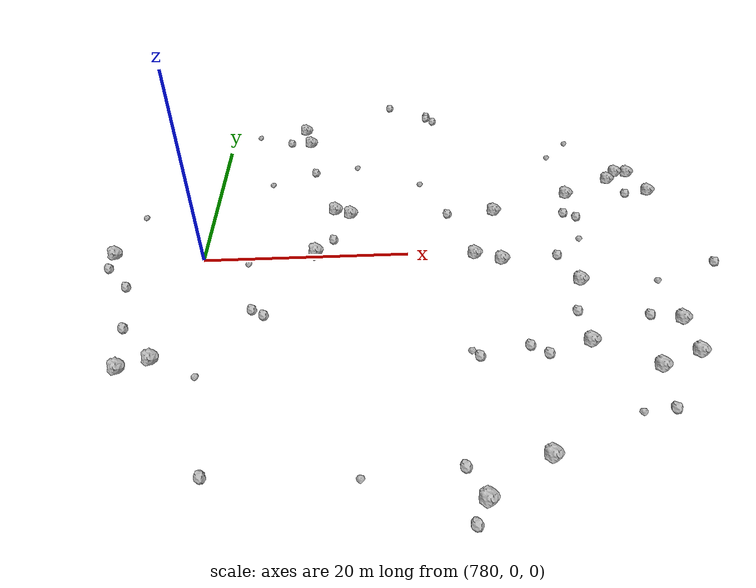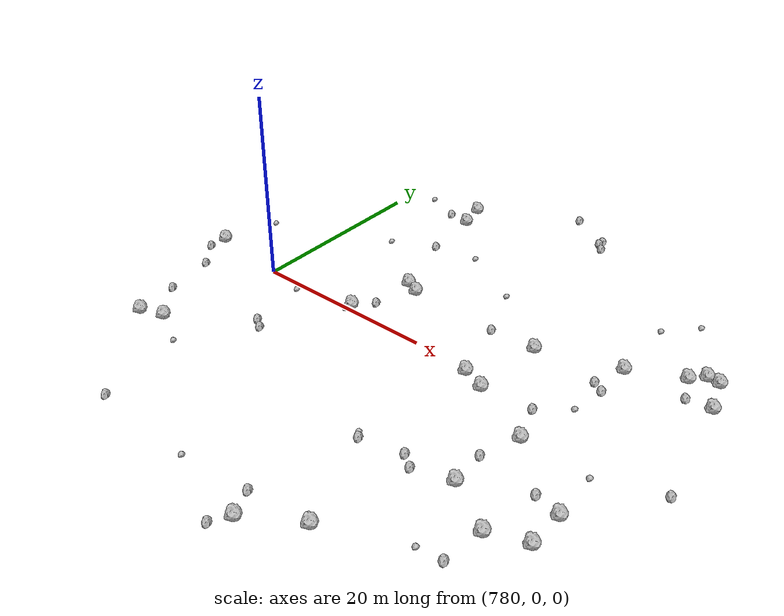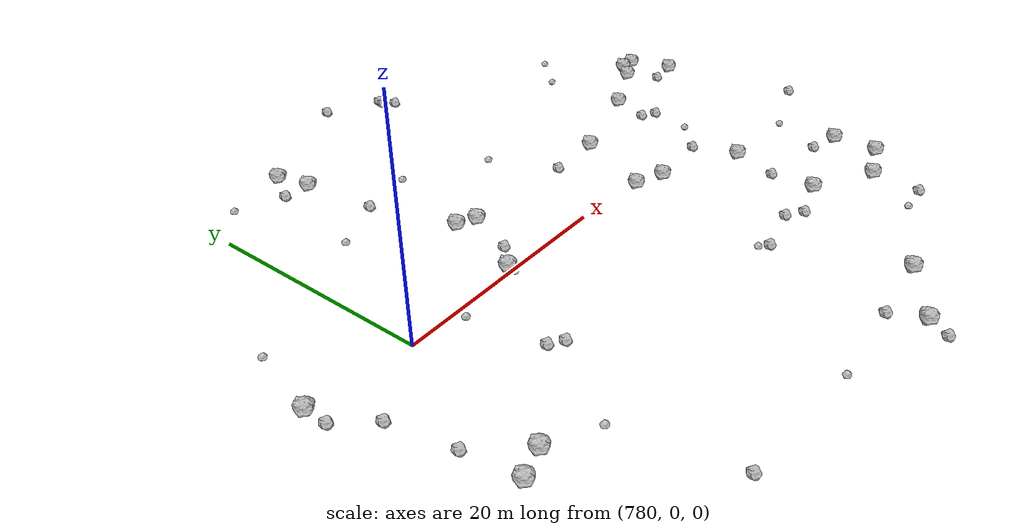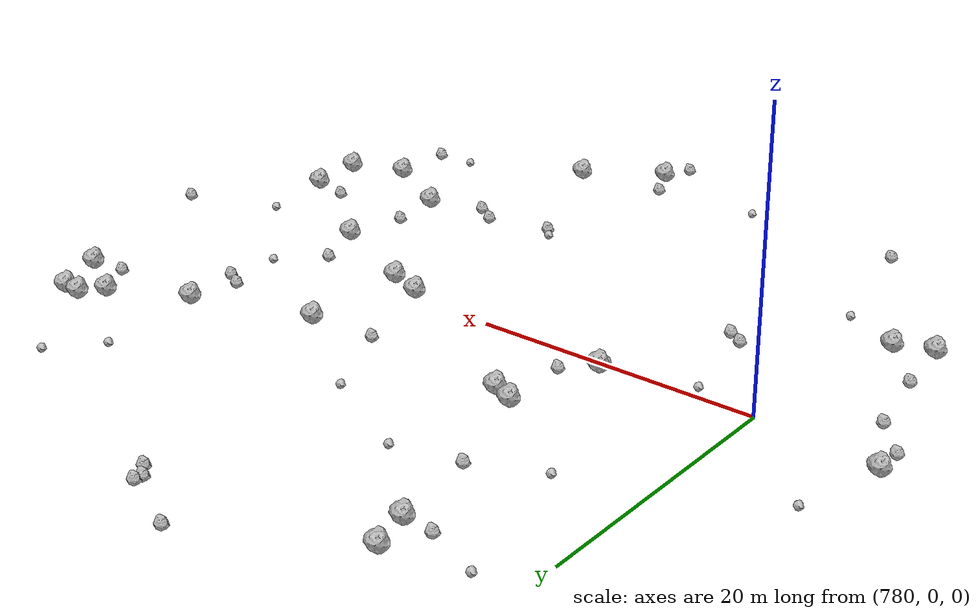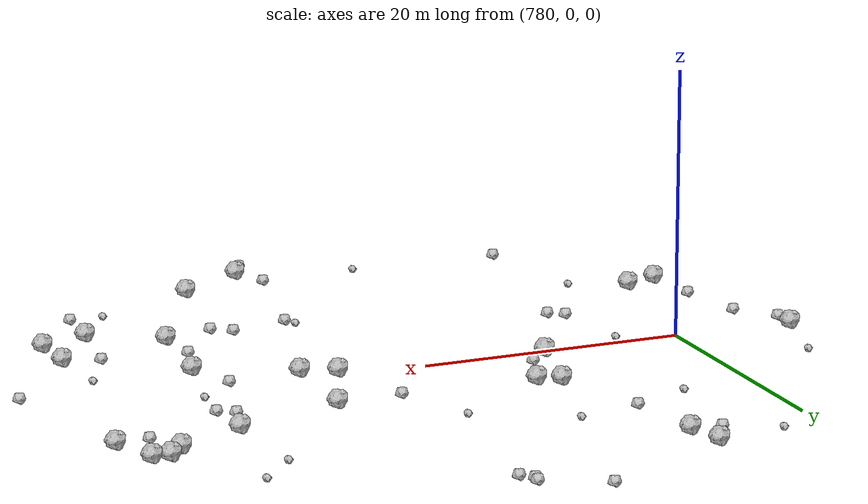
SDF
<sdf version="1.6">
 <world name="default">
  <include><uri>model://sun</uri></include>
  <model name="rock1_20_4">
   <include><uri>model://rock1</uri><pose>771.2413895346851 1.0025985822801253 0.5 0 0 0</pose></include>
  </model>
  <model name="rock1_20_5">
   <include><uri>model://rock1</uri><pose>804.2781979478987 -27.458940520868353 0.5 0 0 0</pose></include>
  </model>
  <model name="rock1_20_6">
   <include><uri>model://rock1</uri><pose>824.2794213380109 13.010856508425157 0.5 0 0 0</pose></include>
  </model>
  <model name="rock1_20_7">
   <include><uri>model://rock1</uri><pose>816.08328965018 -5.118796900271359 0.5 0 0 0</pose></include>
  </model>
  <model name="rock1_20_8">
   <include><uri>model://rock1</uri><pose>777.8053161455944 -13.071980370004177 0.5 0 0 0</pose></include>
  </model>
  <model name="rock1_20_9">
   <include><uri>model://rock1</uri><pose>823.958699056056 -10.70914175880397 0.5 0 0 0</pose></include>
  </model>
  <model name="rock1_20_10">
   <include><uri>model://rock1</uri><pose>809.1282896165948 -1.6986995230441089 0.5 0 0 0</pose></include>
  </model>
  <model name="rock1_20_11">
   <include><uri>model://rock1</uri><pose>826.895289203423 9.147661884640364 0.5 0 0 0</pose></include>
  </model>
  <model name="rock1_20_12">
   <include><uri>model://rock1</uri><pose>775.241918811777 -13.93961945648158 0.5 0 0 0</pose></include>
  </model>
  <model name="rock1_20_13">
   <include><uri>model://rock1</uri><pose>820.3596997757097 -16.064167096448887 0.5 0 0 0</pose></include>
  </model>
  <model name="rock1_20_14">
   <include><uri>model://rock1</uri><pose>823.0394569932622 11.622134451207998 0.5 0 0 0</pose></include>
  </model>
  <model name="rock1_20_15">
   <include><uri>model://rock1</uri><pose>809.4334678734009 6.30007643392338 0.5 0 0 0</pose></include>
  </model>
  <model name="rock1_20_16">
   <include><uri>model://rock1</uri><pose>788.6344221159213 24.288951961075306 0.5 0 0 0</pose></include>
  </model>
  <model name="rock1_20_17">
   <include><uri>model://rock1</uri><pose>825.6092863820486 12.87054773065946 0.5 0 0 0</pose></include>
  </model>
  <model name="rock1_20_18">
   <include><uri>model://rock1</uri><pose>809.5096761577583 -24.16382768047219 0.5 0 0 0</pose></include>
  </model>
  <model name="rock1_20_19">
   <include><uri>model://rock1</uri><pose>792.6836115223563 7.325692890143131 0.5 0 0 0</pose></include>
  </model>
  <model name="rock1_20_20">
   <include><uri>model://rock1</uri><pose>815.1908869982448 -12.964145710568594 0.5 0 0 0</pose></include>
  </model>
  <model name="rock1_20_21">
   <include><uri>model://rock1</uri><pose>824.1030282375715 -14.641981109901447 0.5 0 0 0</pose></include>
  </model>
  <model name="rock1_20_22">
   <include><uri>model://rock1</uri><pose>806.5800009312113 -0.7021979876528341 0.5 0 0 0</pose></include>
  </model>
  <model name="rock1_20_23">
   <include><uri>model://rock1</uri><pose>817.7725954234409 9.015902077811475 0.5 0 0 0</pose></include>
  </model>
  <model name="rock1_20_24">
   <include><uri>model://rock1</uri><pose>790.9183636815505 0.4785256870148977 0.5 0 0 0</pose></include>
  </model>
  <model name="rock1_20_25">
   <include><uri>model://rock1</uri><pose>789.3667446122996 21.30226456389422 0.5 0 0 0</pose></include>
  </model>
  <model name="rock1_20_26">
   <include><uri>model://rock1</uri><pose>794.2899374009821 6.571558060630792 0.5 0 0 0</pose></include>
  </model>
  <model name="rock2_20_0">
   <include><uri>model://rock2</uri><pose>816.7164538583252 5.672235558929181 0.3 0 0 0</pose></include>
  </model>
  <model name="rock2_20_1">
   <include><uri>model://rock2</uri><pose>783.8825666044063 -24.62463687671071 0.3 0 0 0</pose></include>
  </model>
  <model name="rock2_20_2">
   <include><uri>model://rock2</uri><pose>804.3626170646569 26.099732848966838 0.3 0 0 0</pose></include>
  </model>
  <model name="rock2_20_3">
   <include><uri>model://rock2</uri><pose>790.2154081878191 14.843521649005396 0.3 0 0 0</pose></include>
  </model>
  <model name="rock2_20_4">
   <include><uri>model://rock2</uri><pose>819.9965818263361 -20.35158315636011 0.3 0 0 0</pose></include>
  </model>
  <model name="rock2_20_5">
   <include><uri>model://rock2</uri><pose>785.5553742751298 -7.483363810730371 0.3 0 0 0</pose></include>
  </model>
  <model name="rock2_20_6">
   <include><uri>model://rock2</uri><pose>803.2095772309419 -29.299543881249107 0.3 0 0 0</pose></include>
  </model>
  <model name="rock2_20_7">
   <include><uri>model://rock2</uri><pose>803.5664423830104 26.95505395314585 0.3 0 0 0</pose></include>
  </model>
  <model name="rock2_20_8">
   <include><uri>model://rock2</uri><pose>774.5708597502997 -9.236247205330354 0.3 0 0 0</pose></include>
  </model>
  <model name="rock2_20_9">
   <include><uri>model://rock2</uri><pose>804.4428216762806 6.141176389609299 0.3 0 0 0</pose></include>
  </model>
  <model name="rock2_20_10">
   <include><uri>model://rock2</uri><pose>817.9262096218229 4.9241623852431715 0.3 0 0 0</pose></include>
  </model>
  <model name="rock2_20_11">
   <include><uri>model://rock2</uri><pose>787.0008305679634 21.575595298330654 0.3 0 0 0</pose></include>
  </model>
  <model name="rock2_20_12">
   <include><uri>model://rock2</uri><pose>814.8157037114947 -9.160949809583073 0.3 0 0 0</pose></include>
  </model>
  <model name="rock2_20_13">
   <include><uri>model://rock2</uri><pose>803.6519053520531 27.53122739408036 0.3 0 0 0</pose></include>
  </model>
  <model name="rock2_20_14">
   <include><uri>model://rock2</uri><pose>802.9748811719287 -24.74979974924079 0.3 0 0 0</pose></include>
  </model>
  <model name="rock2_20_15">
   <include><uri>model://rock2</uri><pose>824.2936349825636 8.922333565051112 0.3 0 0 0</pose></include>
  </model>
  <model name="rock2_20_16">
   <include><uri>model://rock2</uri><pose>829.6541659679226 -3.0681939799909266 0.3 0 0 0</pose></include>
  </model>
  <model name="rock2_20_17">
   <include><uri>model://rock2</uri><pose>771.1713206292098 -1.0170077856202298 0.3 0 0 0</pose></include>
  </model>
  <model name="rock2_20_18">
   <include><uri>model://rock2</uri><pose>792.6077026356292 2.35570413115898 0.3 0 0 0</pose></include>
  </model>
  <model name="rock2_20_19">
   <include><uri>model://rock2</uri><pose>814.6256319027852 -1.2466750411282916 0.3 0 0 0</pose></include>
  </model>
  <model name="rock2_20_20">
   <include><uri>model://rock2</uri><pose>805.3771855601346 -14.103673457331155 0.3 0 0 0</pose></include>
  </model>
  <model name="rock2_20_21">
   <include><uri>model://rock2</uri><pose>773.4848330945761 -3.783540210583837 0.3 0 0 0</pose></include>
  </model>
  <model name="rock2_20_22">
   <include><uri>model://rock2</uri><pose>821.1743484390574 -9.97485581933552 0.3 0 0 0</pose></include>
  </model>
  <model name="rock2_20_23">
   <include><uri>model://rock2</uri><pose>811.2560780030511 -14.118454372420345 0.3 0 0 0</pose></include>
  </model>
  <model name="rock2_20_24">
   <include><uri>model://rock2</uri><pose>809.8164726230815 -13.101094416978086 0.3 0 0 0</pose></include>
  </model>
  <model name="rock2_20_25">
   <include><uri>model://rock2</uri><pose>786.6788904749435 -8.251462627176931 0.3 0 0 0</pose></include>
  </model>
  <model name="rock2_20_26">
   <include><uri>model://rock2</uri><pose>799.0964470031442 29.86855400962662 0.3 0 0 0</pose></include>
  </model>
  <model name="rock3_20_0">
   <include><uri>model://rock3</uri><pose>795.3316248014501 -25.36498080981136 0.2 0 0 0</pose></include>
  </model>
  <model name="rock3_20_1">
   <include><uri>model://rock3</uri><pose>785.5620604156496 12.669986064986105 0.2 0 0 0</pose></include>
  </model>
  <model name="rock3_20_2">
   <include><uri>model://rock3</uri><pose>794.9419132283978 15.718266672619514 0.2 0 0 0</pose></include>
  </model>
  <model name="rock3_20_3">
   <include><uri>model://rock3</uri><pose>817.3352974383305 -20.57876854658197 0.2 0 0 0</pose></include>
  </model>
  <model name="rock3_20_4">
   <include><uri>model://rock3</uri><pose>783.0433192013329 23.200308840360663 0.2 0 0 0</pose></include>
  </model>
  <model name="rock3_20_5">
   <include><uri>model://rock3</uri><pose>790.7492768856897 -0.31208831255403524 0.2 0 0 0</pose></include>
  </model>
  <model name="rock3_20_6">
   <include><uri>model://rock3</uri><pose>784.456002134123 -0.9943798992028263 0.2 0 0 0</pose></include>
  </model>
  <model name="rock3_20_7">
   <include><uri>model://rock3</uri><pose>817.1733897346655 16.77967860144374 0.2 0 0 0</pose></include>
  </model>
  <model name="rock3_20_8">
   <include><uri>model://rock3</uri><pose>781.7919343479606 -15.143839403270082 0.2 0 0 0</pose></include>
  </model>
  <model name="rock3_20_9">
   <include><uri>model://rock3</uri><pose>823.3596602005659 -5.445051162319402 0.2 0 0 0</pose></include>
  </model>
  <model name="rock3_20_10">
   <include><uri>model://rock3</uri><pose>819.9361552615908 19.872035668037405 0.2 0 0 0</pose></include>
  </model>
  <model name="rock3_20_11">
   <include><uri>model://rock3</uri><pose>772.83290890218 7.165181096330315 0.2 0 0 0</pose></include>
  </model>
  <model name="rock3_20_12">
   <include><uri>model://rock3</uri><pose>817.4045175554216 1.2677781385416438 0.2 0 0 0</pose></include>
  </model>
  <model name="rock3_20_13">
   <include><uri>model://rock3</uri><pose>801.8946898805355 11.976024464841394 0.2 0 0 0</pose></include>
  </model>
  <model name="rock3_20_14">
   <include><uri>model://rock3</uri><pose>804.7655033409696 -13.453344430475 0.2 0 0 0</pose></include>
  </model>
 </world>
</sdf>
